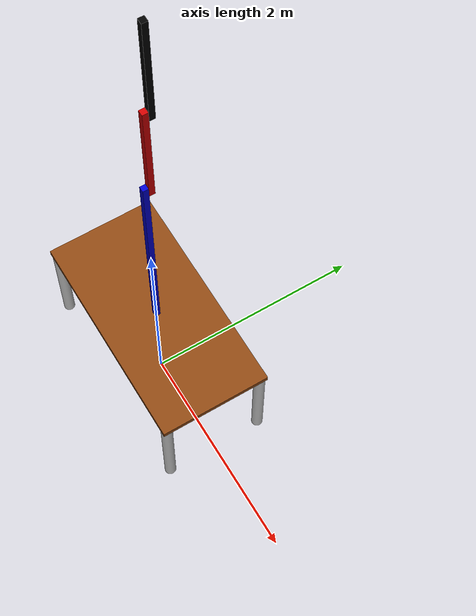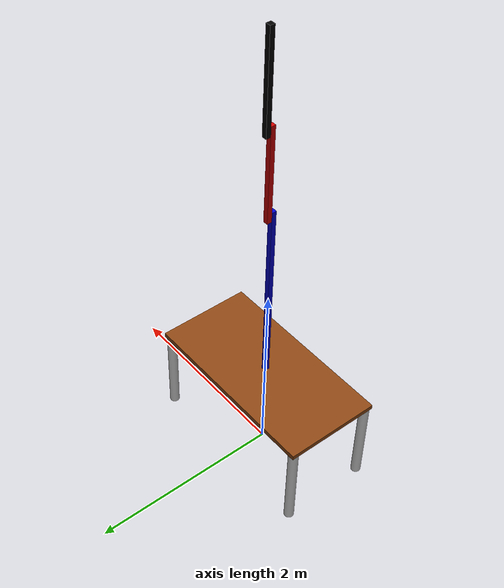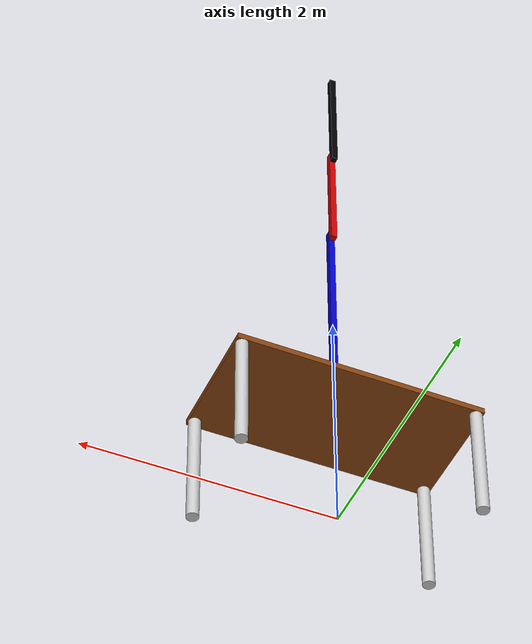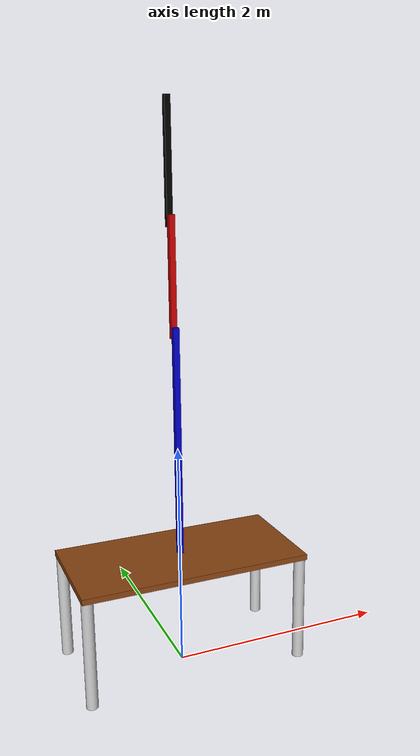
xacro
<?xml version="1.0" encoding="UTF-8"?>
<robot xmlns:xacro="http://wiki.ros.org/xacro" name="rrbot_on_table">

  <!-- Use this if parameters are set from the launch file, otherwise delete -->
  <xacro:arg name="prefix" default="" />

  <xacro:include filename="$(find rrbot_on_table_description)/urdf/common/inertials.xacro"/>
  <xacro:include filename="$(find rrbot_on_table_description)/urdf/common/materials.xacro"/>
  <xacro:include filename="$(find table_description)/urdf/table/table_macro.xacro"/>
  <xacro:include filename="$(find rrbot_description)/urdf/rrbot/rrbot_macro.xacro"/>

  <xacro:arg name="table_prefix" default="table_" />

  <!-- create link fixed to the "world" -->
  <link name="world" />

  <!-- Load robot's macro with parameters -->
  <!-- set prefix if multiple robots are used -->
  <xacro:table prefix="$(arg table_prefix)" parent="world" >
    <origin xyz="0 0 1" rpy="0 0 0" />          <!-- position robot in the world -->
  </xacro:table>

  <xacro:rrbot prefix="rrbot_" parent="$(arg table_prefix)table_top" >
    <origin xyz="0 0 0" rpy="0 0 0" />          <!-- position robot in the world -->
  </xacro:rrbot>

</robot>

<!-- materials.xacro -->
<robot>
  <material name="black">
    <color rgba="0.0 0.0 0.0 1.0"/>
  </material>

  <material name="blue">
    <color rgba="0.0 0.0 0.8 1.0"/>
  </material>

  <material name="green">
    <color rgba="0.0 1.0 0.0 1.0"/>
  </material>

  <material name="dark_grey">
    <color rgba="0.2 0.2 0.2 1.0"/>
  </material>

  <material name="grey">
    <color rgba="0.5 0.5 0.5 1.0"/>
  </material>

  <material name="light_grey">
    <color rgba="0.8 0.8 0.8 1.0"/>
  </material>

  <material name="orange">
    <color rgba="${255/255} ${108/255} ${10/255} 1.0"/>
  </material>

<material name="brown">
    <color rgba="0.54 0.27 0.07 1.0"/>
</material>

  <material name="red">
    <color rgba="0.8 0.0 0.0 1.0"/>
  </material>

  <material name="white">
    <color rgba="1.0 1.0 1.0 1.0"/>
  </material>

</robot>

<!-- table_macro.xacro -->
<robot xmlns:xacro="http://www.ros.org/wiki/xacro">

  <!-- Macro for creating a leg -->
  <xacro:macro name="leg" params="name">
    <link name="${name}">
      <visual>
        <origin xyz="0 0 ${-leg_length/2}" rpy="0 0 0" />
        <geometry>
          <cylinder length="${leg_length}" radius="${leg_radius}" />
        </geometry>
        <material name="light_grey" />
      </visual>
      <collision>
        <origin xyz="0 0 ${-leg_length/2}" rpy="0 0 0" />
        <geometry>
          <cylinder length="${leg_length}" radius="${leg_radius}" />
        </geometry>
      </collision>

      <xacro:cylinder_inertial radius="${leg_radius}" length="${leg_length}" mass="${leg_mass}">
        <origin xyz="0 0 ${-leg_length/2}" rpy="0 0 0" />
      </xacro:cylinder_inertial>
    </link>
  </xacro:macro>

  <xacro:macro name="table" params="parent prefix  *origin">

    <!-- Constants for Table and Legs -->
    <xacro:property name="table_length" value="2" />
    <xacro:property name="table_width" value="1" />
    <xacro:property name="table_height" value="1" />
    <xacro:property name="table_thickness" value="0.05" />
    <xacro:property name="wood_density" value="800" />
    <xacro:property name="table_mass" value="${table_length * table_width * table_thickness * wood_density}" />
    <xacro:property name="leg_length" value="${table_height - table_thickness}" />
    <xacro:property name="leg_radius" value="0.05" />
    <xacro:property name="aluminum_density" value="2700" />
    <xacro:property name="leg_mass" value="${pi*leg_radius*leg_radius*leg_length*aluminum_density}" />

    <!-- create four legs -->
    <xacro:leg name="${prefix}leg1" />
    <xacro:leg name="${prefix}leg2" />
    <xacro:leg name="${prefix}leg3" />
    <xacro:leg name="${prefix}leg4" />

    <!-- Attach the legs to the table_top using fixed joints -->
    <joint name="${prefix}leg1_joint" type="fixed">
      <parent link="${prefix}table_top" />
      <child link="${prefix}leg1" />
      <origin xyz="${table_length/2 - leg_radius} ${table_width/2 - leg_radius} ${-table_thickness}" rpy="0 0 0" />
    </joint>

    <joint name="${prefix}leg2_joint" type="fixed">
      <parent link="${prefix}table_top" />
      <child link="${prefix}leg2" />
      <origin xyz="${-table_length/2 + leg_radius} ${table_width/2 - leg_radius} ${-table_thickness}" rpy="0 0 0" />
    </joint>

    <joint name="${prefix}leg3_joint" type="fixed">
      <parent link="${prefix}table_top" />
      <child link="${prefix}leg3" />
      <origin xyz="${-table_length/2 + leg_radius} ${-table_width/2 + leg_radius} ${-table_thickness}" rpy="0 0 0" />
    </joint>

    <joint name="${prefix}leg4_joint" type="fixed">
      <parent link="${prefix}table_top" />
      <child link="${prefix}leg4" />
      <origin xyz="${table_length/2 - leg_radius} ${-table_width/2 + leg_radius} ${-table_thickness}" rpy="0 0 0" />
    </joint>

    <!-- Table top joint -->
    <joint name="${prefix}table_top_joint" type="fixed">
      <parent link="${parent}" />
      <child link="${prefix}table_top" />
      <origin xyz="0 0 ${table_height + table_thickness}" rpy="0 0 0" />
    </joint>

  <!-- Base Link, Table Top -->
    <link name="${prefix}table_top">
      <collision>
        <origin xyz="0 0 ${-table_thickness/2}" rpy="0 0 0" />
        <geometry>
          <box size="${table_length} ${table_width} ${table_thickness}" />
        </geometry>
      </collision>

      <visual>
        <origin xyz="0 0 ${-table_thickness/2}" rpy="0 0 0" />
        <geometry>
          <box size="${table_length} ${table_width} ${table_thickness}" />
        </geometry>
        <material name="brown" />
      </visual>

      <xacro:box_inertial x="${table_width}" y="${table_length}" z="${table_thickness}" mass="${table_mass}">
        <origin xyz="0 0 ${table_thickness / 2}" rpy="0 0 0" />
      </xacro:box_inertial>
    </link>

  </xacro:macro>

</robot>

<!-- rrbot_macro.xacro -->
<robot xmlns:xacro="http://wiki.ros.org/xacro">

  <xacro:macro name="rrbot" params="parent prefix *origin">

    <!-- Constants for robot dimensions -->
    <xacro:property name="mass" value="10" /> <!-- arbitrary value for mass -->
    <xacro:property name="width" value="0.05" /> <!-- Square dimensions (widthxwidth) of beams -->
    <xacro:property name="height1" value="2" /> <!-- Link 1 -->
    <xacro:property name="height2" value="1" /> <!-- Link 2 -->
    <xacro:property name="height3" value="1" /> <!-- Link 3 -->
    <xacro:property name="axel_offset" value="0.05" /> <!-- Space btw top of beam and the each joint -->

    <joint name="${prefix}base_joint" type="fixed">
      <xacro:insert_block name="origin" />
      <parent link="${parent}" />
      <child link="${prefix}base_link" />
    </joint>

    <!-- Base Link -->
    <link name="${prefix}base_link">
      <collision>
        <origin xyz="0 0 ${height1/2}" rpy="0 0 0" />
        <geometry>
          <box size="${width} ${width} ${height1}" />
        </geometry>
      </collision>

      <visual>
        <origin xyz="0 0 ${height1/2}" rpy="0 0 0" />
        <geometry>
          <box size="${width} ${width} ${height1}" />
        </geometry>
        <material name="blue" />
      </visual>

      <xacro:box_inertial x="${width}" y="${width}" z="${height1}" mass="${mass}">
        <origin xyz="0 0 ${height1/2}" rpy="0 0 0" />
      </xacro:box_inertial>
    </link>

    <joint name="${prefix}joint1" type="continuous">
      <parent link="${prefix}base_link" />
      <child link="${prefix}link1" />
      <origin xyz="0 ${width} ${height1 - axel_offset}" rpy="0 0 0" />
      <axis xyz="0 1 0" />
      <limit effort="1000" velocity="10.0" />
    </joint>

    <!-- Middle Link -->
    <link name="${prefix}link1">
      <collision>
        <origin xyz="0 0 ${height2/2 - axel_offset}" rpy="0 0 0" />
        <geometry>
          <box size="${width} ${width} ${height2}" />
        </geometry>
      </collision>

      <visual>
        <origin xyz="0 0 ${height2/2 - axel_offset}" rpy="0 0 0" />
        <geometry>
          <box size="${width} ${width} ${height2}" />
        </geometry>
        <material name="red" />
      </visual>

      <xacro:box_inertial x="${width}" y="${width}" z="${height2}" mass="${mass}">
        <origin xyz="0 0 ${height2/2 - axel_offset}" rpy="0 0 0" />
      </xacro:box_inertial>
    </link>

    <joint name="${prefix}joint2" type="continuous">
      <parent link="${prefix}link1" />
      <child link="${prefix}link2" />
      <origin xyz="0 ${width} ${height2 - axel_offset*2}" rpy="0 0 0" />
      <axis xyz="0 1 0" />
      <limit effort="1000" velocity="10.0" />
    </joint>

    <!-- Top Link -->
    <link name="${prefix}link2">
      <collision>
        <origin xyz="0 0 ${height3/2 - axel_offset}" rpy="0 0 0" />
        <geometry>
          <box size="${width} ${width} ${height3}" />
        </geometry>
      </collision>

      <visual>
        <origin xyz="0 0 ${height3/2 - axel_offset}" rpy="0 0 0" />
        <geometry>
          <box size="${width} ${width} ${height3}" />
        </geometry>
        <material name="black" />
      </visual>

      <xacro:box_inertial x="${width}" y="${width}" z="${height3}" mass="${mass}">
        <origin xyz="0 0 ${height3/2 - axel_offset}" rpy="0 0 0" />
      </xacro:box_inertial>
    </link>

    <joint name="${prefix}tool_joint" type="fixed">
      <origin xyz="0 0 ${height3-axel_offset}" rpy="0 0 0" />
      <parent link="${prefix}link2" />
      <child link="${prefix}tool0" />
    </joint>

    <!-- Tool Link -->
    <link name="${prefix}tool0"/>

  </xacro:macro>
</robot>
